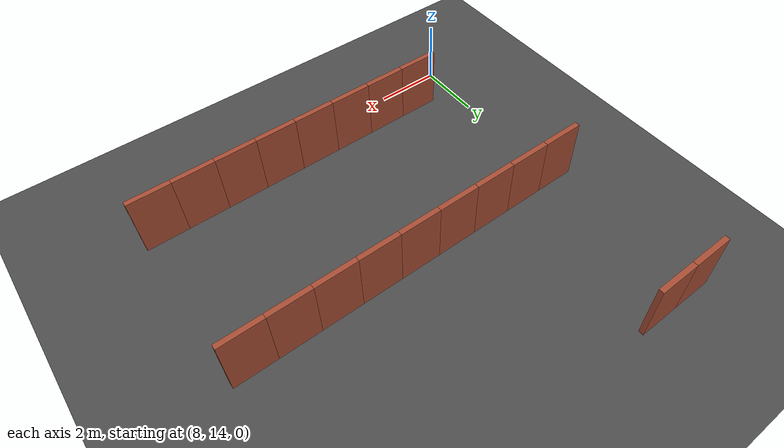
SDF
<sdf version="1.6">
 <world name="default">
  <model name="ground_plane">
   <static>1</static>
   <link name="link">
    <collision name="collision">
     <geometry><plane><normal>0 0 1</normal><size>100 100</size></plane></geometry>
     <surface><friction><ode><mu>100</mu><mu2>50</mu2></ode></friction></surface>
    </collision>
    <visual name="visual">
     <cast_shadows>0</cast_shadows>
     <geometry><plane><normal>0 0 1</normal><size>100 100</size></plane></geometry>
     <material>
      <script><uri>file://media/materials/scripts/gazebo.material</uri><name>Gazebo/Grey</name></script>
     </material>
    </visual>
   </link>
  </model>
  <model name="asphalt_plane">
   <static>1</static>
   <link name="link">
    <collision name="collision"><geometry><box><size>100 100 0.1</size></box></geometry></collision>
    <visual name="visual">
     <cast_shadows>0</cast_shadows>
     <geometry><box><size>100 100 0.1</size></box></geometry>
     <material>
      <script>
       <uri>model://asphalt_plane/materials/scripts</uri>
       <uri>model://asphalt_plane/materials/textures</uri>
       <name>vrc/asphalt</name>
      </script>
     </material>
    </visual>
   </link>
  </model>
  <model name="brick_wall_23_28_vertical1">
   <pose>8.125 20 0 0 -0 0</pose>
   <link name="Wall_0">
    <collision name="Wall_0_Collision">
     <geometry><box><size>1.25 0.15 2</size></box></geometry>
     <pose>0 0 1 0 -0 0</pose>
    </collision>
    <visual name="Wall_0_Visual">
     <pose>0 0 1 0 -0 0</pose>
     <geometry><box><size>1.25 0.15 2</size></box></geometry>
     <material>
      <script><uri>file://media/materials/scripts/gazebo.material</uri><name>Gazebo/Bricks</name></script>
      <ambient>1 1 1 1</ambient>
     </material>
     <meta><layer>0</layer></meta>
    </visual>
   </link>
   <static>1</static>
  </model>
  <model name="brick_wall_23_30_vertical1">
   <pose>8.125 25 0 0 -0 0</pose>
   <link name="Wall_0">
    <collision name="Wall_0_Collision">
     <geometry><box><size>1.25 0.15 2</size></box></geometry>
     <pose>0 0 1 0 -0 0</pose>
    </collision>
    <visual name="Wall_0_Visual">
     <pose>0 0 1 0 -0 0</pose>
     <geometry><box><size>1.25 0.15 2</size></box></geometry>
     <material>
      <script><uri>file://media/materials/scripts/gazebo.material</uri><name>Gazebo/Bricks</name></script>
      <ambient>1 1 1 1</ambient>
     </material>
     <meta><layer>0</layer></meta>
    </visual>
   </link>
   <static>1</static>
  </model>
  <model name="brick_wall_24_26_vertical1">
   <pose>10.625 15 0 0 -0 0</pose>
   <link name="Wall_0">
    <collision name="Wall_0_Collision">
     <geometry><box><size>1.25 0.15 2</size></box></geometry>
     <pose>0 0 1 0 -0 0</pose>
    </collision>
    <visual name="Wall_0_Visual">
     <pose>0 0 1 0 -0 0</pose>
     <geometry><box><size>1.25 0.15 2</size></box></geometry>
     <material>
      <script><uri>file://media/materials/scripts/gazebo.material</uri><name>Gazebo/Bricks</name></script>
      <ambient>1 1 1 1</ambient>
     </material>
     <meta><layer>0</layer></meta>
    </visual>
   </link>
   <static>1</static>
  </model>
  <model name="brick_wall_24_26_vertical2">
   <pose>9.375 15 0 0 -0 0</pose>
   <link name="Wall_0">
    <collision name="Wall_0_Collision">
     <geometry><box><size>1.25 0.15 2</size></box></geometry>
     <pose>0 0 1 0 -0 0</pose>
    </collision>
    <visual name="Wall_0_Visual">
     <pose>0 0 1 0 -0 0</pose>
     <geometry><box><size>1.25 0.15 2</size></box></geometry>
     <material>
      <script><uri>file://media/materials/scripts/gazebo.material</uri><name>Gazebo/Bricks</name></script>
      <ambient>1 1 1 1</ambient>
     </material>
     <meta><layer>0</layer></meta>
    </visual>
   </link>
   <static>1</static>
  </model>
  <model name="brick_wall_24_28_vertical1">
   <pose>10.625 20 0 0 -0 0</pose>
   <link name="Wall_0">
    <collision name="Wall_0_Collision">
     <geometry><box><size>1.25 0.15 2</size></box></geometry>
     <pose>0 0 1 0 -0 0</pose>
    </collision>
    <visual name="Wall_0_Visual">
     <pose>0 0 1 0 -0 0</pose>
     <geometry><box><size>1.25 0.15 2</size></box></geometry>
     <material>
      <script><uri>file://media/materials/scripts/gazebo.material</uri><name>Gazebo/Bricks</name></script>
      <ambient>1 1 1 1</ambient>
     </material>
     <meta><layer>0</layer></meta>
    </visual>
   </link>
   <static>1</static>
  </model>
  <model name="brick_wall_24_28_vertical2">
   <pose>9.375 20 0 0 -0 0</pose>
   <link name="Wall_0">
    <collision name="Wall_0_Collision">
     <geometry><box><size>1.25 0.15 2</size></box></geometry>
     <pose>0 0 1 0 -0 0</pose>
    </collision>
    <visual name="Wall_0_Visual">
     <pose>0 0 1 0 -0 0</pose>
     <geometry><box><size>1.25 0.15 2</size></box></geometry>
     <material>
      <script><uri>file://media/materials/scripts/gazebo.material</uri><name>Gazebo/Bricks</name></script>
      <ambient>1 1 1 1</ambient>
     </material>
     <meta><layer>0</layer></meta>
    </visual>
   </link>
   <static>1</static>
  </model>
  <model name="brick_wall_24_30_vertical2">
   <pose>9.375 25 0 0 -0 0</pose>
   <link name="Wall_0">
    <collision name="Wall_0_Collision">
     <geometry><box><size>1.25 0.15 2</size></box></geometry>
     <pose>0 0 1 0 -0 0</pose>
    </collision>
    <visual name="Wall_0_Visual">
     <pose>0 0 1 0 -0 0</pose>
     <geometry><box><size>1.25 0.15 2</size></box></geometry>
     <material>
      <script><uri>file://media/materials/scripts/gazebo.material</uri><name>Gazebo/Bricks</name></script>
      <ambient>1 1 1 1</ambient>
     </material>
     <meta><layer>0</layer></meta>
    </visual>
   </link>
   <static>1</static>
  </model>
  <model name="brick_wall_25_26_vertical1">
   <pose>13.125 15 0 0 -0 0</pose>
   <link name="Wall_0">
    <collision name="Wall_0_Collision">
     <geometry><box><size>1.25 0.15 2</size></box></geometry>
     <pose>0 0 1 0 -0 0</pose>
    </collision>
    <visual name="Wall_0_Visual">
     <pose>0 0 1 0 -0 0</pose>
     <geometry><box><size>1.25 0.15 2</size></box></geometry>
     <material>
      <script><uri>file://media/materials/scripts/gazebo.material</uri><name>Gazebo/Bricks</name></script>
      <ambient>1 1 1 1</ambient>
     </material>
     <meta><layer>0</layer></meta>
    </visual>
   </link>
   <static>1</static>
  </model>
  <model name="brick_wall_25_26_vertical2">
   <pose>11.875 15 0 0 -0 0</pose>
   <link name="Wall_0">
    <collision name="Wall_0_Collision">
     <geometry><box><size>1.25 0.15 2</size></box></geometry>
     <pose>0 0 1 0 -0 0</pose>
    </collision>
    <visual name="Wall_0_Visual">
     <pose>0 0 1 0 -0 0</pose>
     <geometry><box><size>1.25 0.15 2</size></box></geometry>
     <material>
      <script><uri>file://media/materials/scripts/gazebo.material</uri><name>Gazebo/Bricks</name></script>
      <ambient>1 1 1 1</ambient>
     </material>
     <meta><layer>0</layer></meta>
    </visual>
   </link>
   <static>1</static>
  </model>
  <model name="brick_wall_25_28_vertical1">
   <pose>13.125 20 0 0 -0 0</pose>
   <link name="Wall_0">
    <collision name="Wall_0_Collision">
     <geometry><box><size>1.25 0.15 2</size></box></geometry>
     <pose>0 0 1 0 -0 0</pose>
    </collision>
    <visual name="Wall_0_Visual">
     <pose>0 0 1 0 -0 0</pose>
     <geometry><box><size>1.25 0.15 2</size></box></geometry>
     <material>
      <script><uri>file://media/materials/scripts/gazebo.material</uri><name>Gazebo/Bricks</name></script>
      <ambient>1 1 1 1</ambient>
     </material>
     <meta><layer>0</layer></meta>
    </visual>
   </link>
   <static>1</static>
  </model>
  <model name="brick_wall_25_28_vertical2">
   <pose>11.875 20 0 0 -0 0</pose>
   <link name="Wall_0">
    <collision name="Wall_0_Collision">
     <geometry><box><size>1.25 0.15 2</size></box></geometry>
     <pose>0 0 1 0 -0 0</pose>
    </collision>
    <visual name="Wall_0_Visual">
     <pose>0 0 1 0 -0 0</pose>
     <geometry><box><size>1.25 0.15 2</size></box></geometry>
     <material>
      <script><uri>file://media/materials/scripts/gazebo.material</uri><name>Gazebo/Bricks</name></script>
      <ambient>1 1 1 1</ambient>
     </material>
     <meta><layer>0</layer></meta>
    </visual>
   </link>
   <static>1</static>
  </model>
  <model name="brick_wall_26_26_vertical1">
   <pose>15.625 15 0 0 -0 0</pose>
   <link name="Wall_0">
    <collision name="Wall_0_Collision">
     <geometry><box><size>1.25 0.15 2</size></box></geometry>
     <pose>0 0 1 0 -0 0</pose>
    </collision>
    <visual name="Wall_0_Visual">
     <pose>0 0 1 0 -0 0</pose>
     <geometry><box><size>1.25 0.15 2</size></box></geometry>
     <material>
      <script><uri>file://media/materials/scripts/gazebo.material</uri><name>Gazebo/Bricks</name></script>
      <ambient>1 1 1 1</ambient>
     </material>
     <meta><layer>0</layer></meta>
    </visual>
   </link>
   <static>1</static>
  </model>
  <model name="brick_wall_26_26_vertical2">
   <pose>14.375 15 0 0 -0 0</pose>
   <link name="Wall_0">
    <collision name="Wall_0_Collision">
     <geometry><box><size>1.25 0.15 2</size></box></geometry>
     <pose>0 0 1 0 -0 0</pose>
    </collision>
    <visual name="Wall_0_Visual">
     <pose>0 0 1 0 -0 0</pose>
     <geometry><box><size>1.25 0.15 2</size></box></geometry>
     <material>
      <script><uri>file://media/materials/scripts/gazebo.material</uri><name>Gazebo/Bricks</name></script>
      <ambient>1 1 1 1</ambient>
     </material>
     <meta><layer>0</layer></meta>
    </visual>
   </link>
   <static>1</static>
  </model>
  <model name="brick_wall_26_28_vertical1">
   <pose>15.625 20 0 0 -0 0</pose>
   <link name="Wall_0">
    <collision name="Wall_0_Collision">
     <geometry><box><size>1.25 0.15 2</size></box></geometry>
     <pose>0 0 1 0 -0 0</pose>
    </collision>
    <visual name="Wall_0_Visual">
     <pose>0 0 1 0 -0 0</pose>
     <geometry><box><size>1.25 0.15 2</size></box></geometry>
     <material>
      <script><uri>file://media/materials/scripts/gazebo.material</uri><name>Gazebo/Bricks</name></script>
      <ambient>1 1 1 1</ambient>
     </material>
     <meta><layer>0</layer></meta>
    </visual>
   </link>
   <static>1</static>
  </model>
  <model name="brick_wall_26_28_vertical2">
   <pose>14.375 20 0 0 -0 0</pose>
   <link name="Wall_0">
    <collision name="Wall_0_Collision">
     <geometry><box><size>1.25 0.15 2</size></box></geometry>
     <pose>0 0 1 0 -0 0</pose>
    </collision>
    <visual name="Wall_0_Visual">
     <pose>0 0 1 0 -0 0</pose>
     <geometry><box><size>1.25 0.15 2</size></box></geometry>
     <material>
      <script><uri>file://media/materials/scripts/gazebo.material</uri><name>Gazebo/Bricks</name></script>
      <ambient>1 1 1 1</ambient>
     </material>
     <meta><layer>0</layer></meta>
    </visual>
   </link>
   <static>1</static>
  </model>
  <model name="brick_wall_27_26_vertical1">
   <pose>18.125 15 0 0 -0 0</pose>
   <link name="Wall_0">
    <collision name="Wall_0_Collision">
     <geometry><box><size>1.25 0.15 2</size></box></geometry>
     <pose>0 0 1 0 -0 0</pose>
    </collision>
    <visual name="Wall_0_Visual">
     <pose>0 0 1 0 -0 0</pose>
     <geometry><box><size>1.25 0.15 2</size></box></geometry>
     <material>
      <script><uri>file://media/materials/scripts/gazebo.material</uri><name>Gazebo/Bricks</name></script>
      <ambient>1 1 1 1</ambient>
     </material>
     <meta><layer>0</layer></meta>
    </visual>
   </link>
   <static>1</static>
  </model>
  <model name="brick_wall_27_26_vertical2">
   <pose>16.875 15 0 0 -0 0</pose>
   <link name="Wall_0">
    <collision name="Wall_0_Collision">
     <geometry><box><size>1.25 0.15 2</size></box></geometry>
     <pose>0 0 1 0 -0 0</pose>
    </collision>
    <visual name="Wall_0_Visual">
     <pose>0 0 1 0 -0 0</pose>
     <geometry><box><size>1.25 0.15 2</size></box></geometry>
     <material>
      <script><uri>file://media/materials/scripts/gazebo.material</uri><name>Gazebo/Bricks</name></script>
      <ambient>1 1 1 1</ambient>
     </material>
     <meta><layer>0</layer></meta>
    </visual>
   </link>
   <static>1</static>
  </model>
  <model name="brick_wall_27_28_vertical1">
   <pose>18.125 20 0 0 -0 0</pose>
   <link name="Wall_0">
    <collision name="Wall_0_Collision">
     <geometry><box><size>1.25 0.15 2</size></box></geometry>
     <pose>0 0 1 0 -0 0</pose>
    </collision>
    <visual name="Wall_0_Visual">
     <pose>0 0 1 0 -0 0</pose>
     <geometry><box><size>1.25 0.15 2</size></box></geometry>
     <material>
      <script><uri>file://media/materials/scripts/gazebo.material</uri><name>Gazebo/Bricks</name></script>
      <ambient>1 1 1 1</ambient>
     </material>
     <meta><layer>0</layer></meta>
    </visual>
   </link>
   <static>1</static>
  </model>
  <model name="brick_wall_27_28_vertical2">
   <pose>16.875 20 0 0 -0 0</pose>
   <link name="Wall_0">
    <collision name="Wall_0_Collision">
     <geometry><box><size>1.25 0.15 2</size></box></geometry>
     <pose>0 0 1 0 -0 0</pose>
    </collision>
    <visual name="Wall_0_Visual">
     <pose>0 0 1 0 -0 0</pose>
     <geometry><box><size>1.25 0.15 2</size></box></geometry>
     <material>
      <script><uri>file://media/materials/scripts/gazebo.material</uri><name>Gazebo/Bricks</name></script>
      <ambient>1 1 1 1</ambient>
     </material>
     <meta><layer>0</layer></meta>
    </visual>
   </link>
   <static>1</static>
  </model>
 </world>
</sdf>
